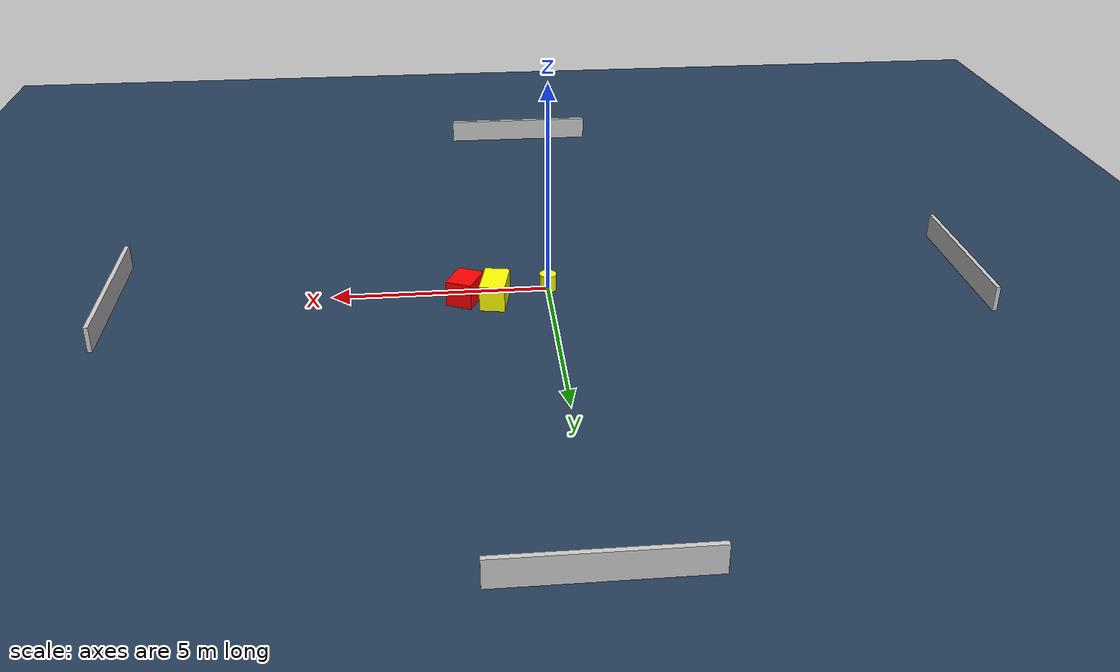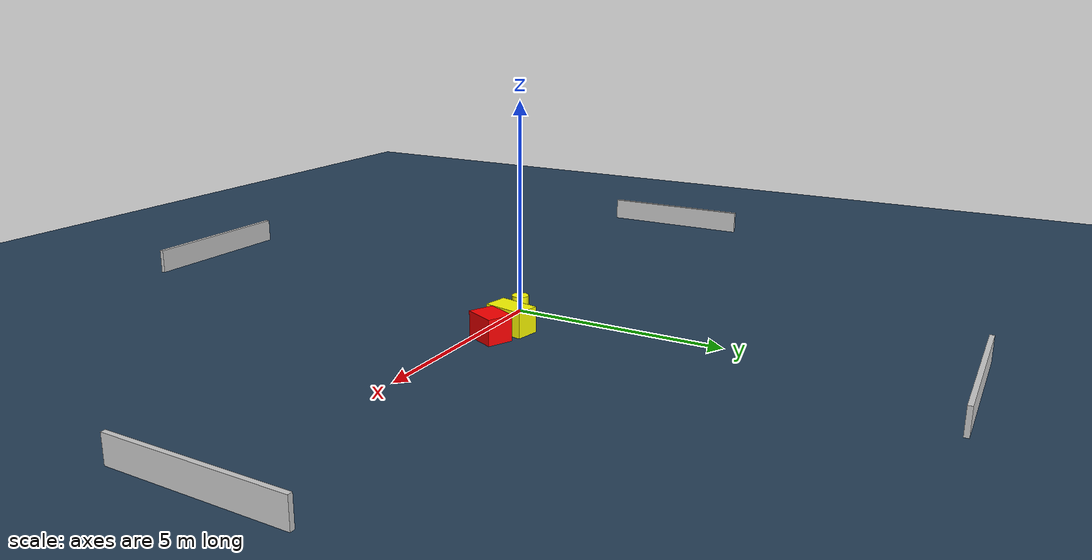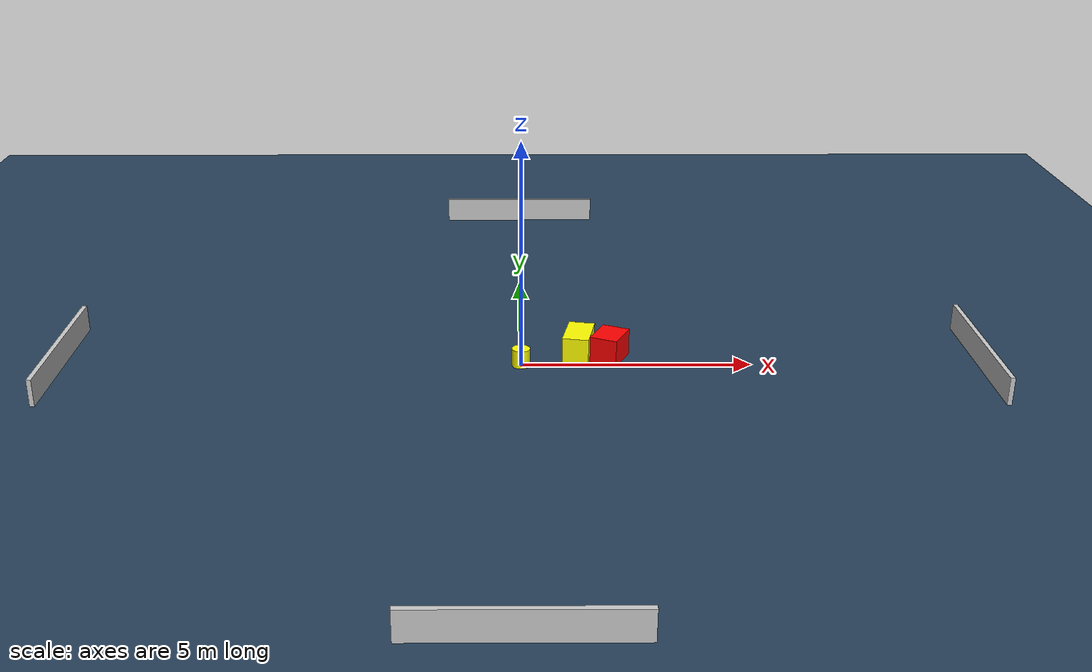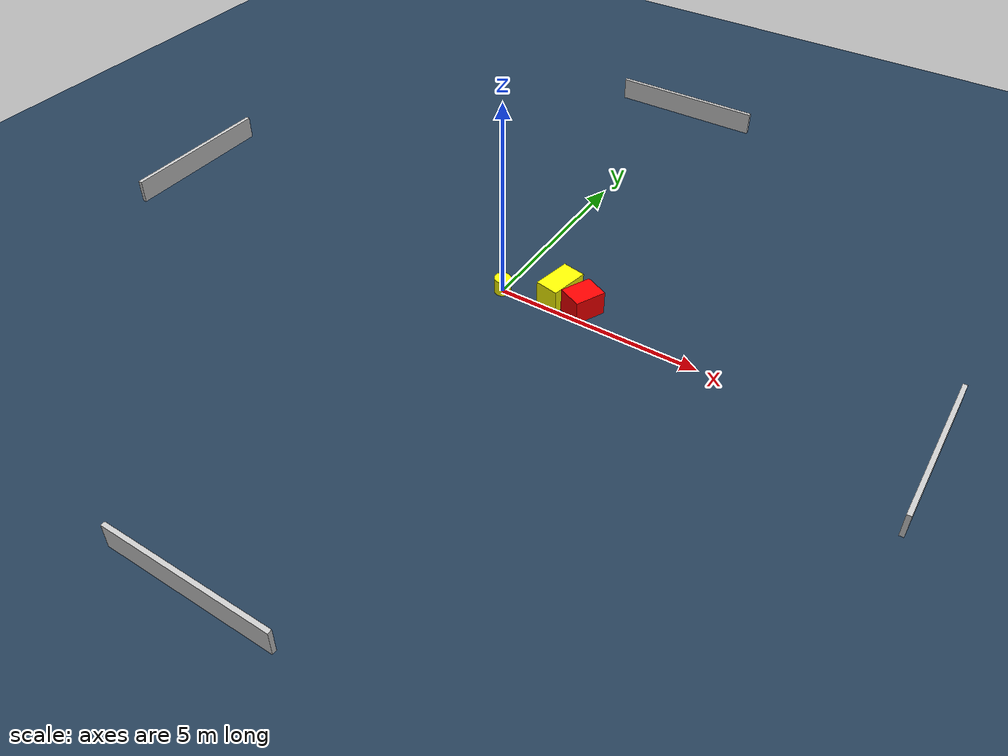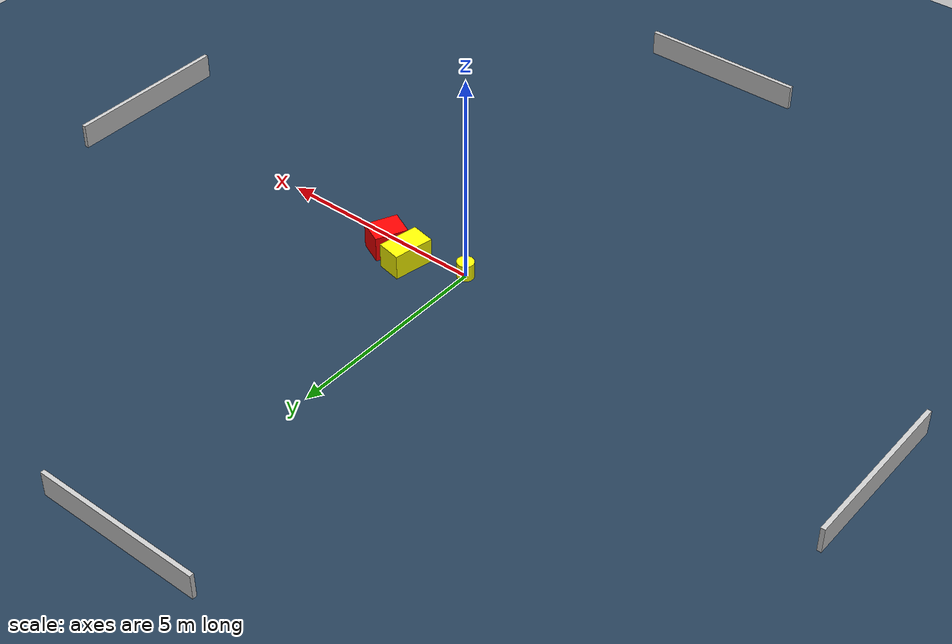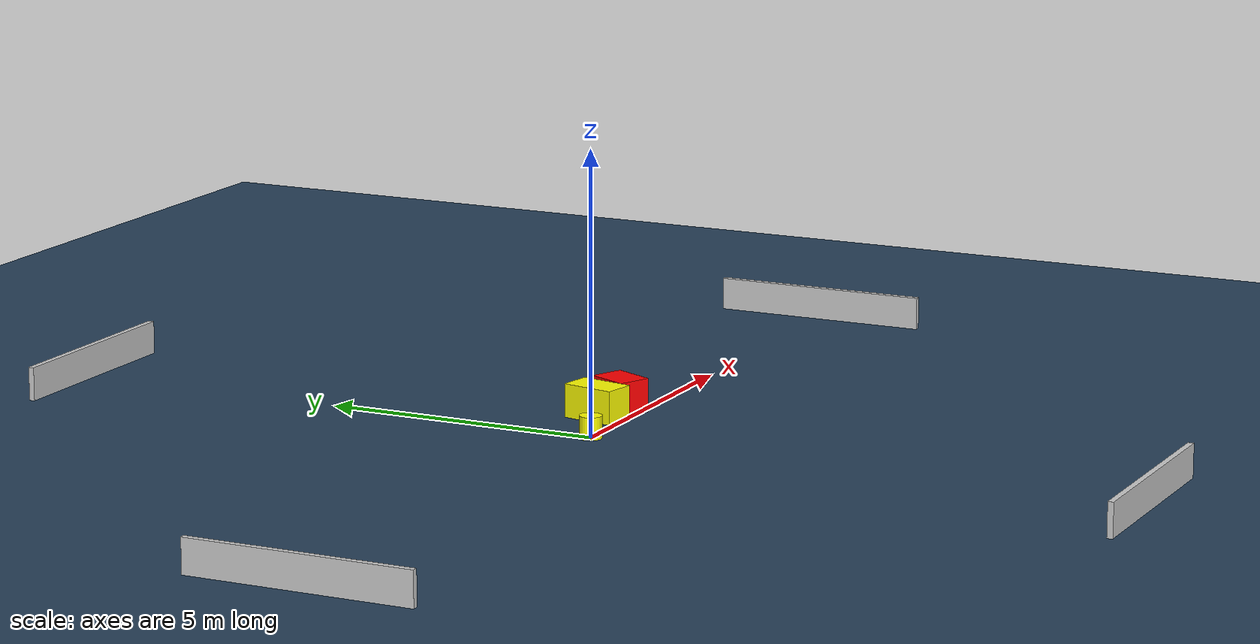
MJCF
<?xml version="1.0" ?>
<mujoco model="generated_environment">
  <option timestep="0.01" integrator="RK4" cone="elliptic"/>
  <default>
    <geom density="1"/>
  </default>
  <asset>
    <texture builtin="gradient" height="3072" name="skybox" rgb1="0.3 0.5 0.7" rgb2="0 0 0" type="skybox" width="512"/>
    <texture builtin="checker" height="300" name="groundplane" rgb1="0.2 0.3 0.4" rgb2="0.1 0.2 0.3" type="2d" width="300"/>
    <material name="groundplane" reflectance="0.2" texrepeat="5 5" texture="groundplane"/>
  </asset>
  <worldbody>
    <light dir="0 0 -1" directional="true" pos="0 0 1.5"/>
    <geom condim="3" friction="0.5 0.005 0.001" material="groundplane" name="floor" pos="0 0 0" size="0 0 0.05" type="plane"/>
    <body name="walls">
      <geom name="wall_1" condim="4" pos="-10.0 0.0 0.3" rgba="0.800000011920929 0.800000011920929 0.800000011920929 1.0" size="0.05 2.0 0.3" type="box"/>
      <geom name="wall_2" condim="4" pos="10.0 0.0 0.3" rgba="0.800000011920929 0.800000011920929 0.800000011920929 1.0" size="0.05 2.0 0.3" type="box"/>
      <geom name="wall_3" condim="4" pos="0.0 -10.0 0.3" rgba="0.800000011920929 0.800000011920929 0.800000011920929 1.0" size="2.0 0.05 0.3" type="box"/>
      <geom name="wall_4" condim="4" pos="0.0 10.0 0.3" rgba="0.800000011920929 0.800000011920929 0.800000011920929 1.0" size="2.0 0.05 0.3" type="box"/>
    </body>
    <body name="robot">
      <joint name="joint_x" type="slide" pos="0 0 0" axis="1 0 0"/>
      <joint name="joint_y" type="slide" pos="0 0 0" axis="0 1 0"/>
      <geom name="robot" type="cylinder" pos="0.0 0.0 0.2" size="0.2 0.2 0.0" mass="5.0" friction="1.0 0.005 0.0001" condim="4" rgba="1.0 1.0 0.0 1.0"/>
    </body>
    <body name="obstacle_1_movable">
      <geom name="obstacle_1_movable" condim="4" pos="1.2700703366459654 0.4959749590862227 0.3" euler="0 0 78.98416875146974" friction="0.0 0.005 0.001" rgba="1.0 1.0 0.0 1.0" size="0.48480886287087205 0.28900926498367036 0.3" type="box" mass="0.1"/>
      <joint type="free"/>
    </body>
    <body name="obstacle_2_static">
      <geom name="obstacle_2_static" condim="4" pos="1.9457890151079236 0.3679177074966494 0.3" euler="0 0 244.86539439653532" friction="0.0 0.005 0.001" rgba="1.0 0.0 0.0 1.0" size="0.38758311656594835 0.3061035198345654 0.3" type="box"/>
    </body>
  </worldbody>
  <actuator>
    <motor name="actuator_x" joint="joint_x" gear="1" ctrlrange="-1 1"/>
    <motor name="actuator_y" joint="joint_y" gear="1" ctrlrange="-1 1"/>
  </actuator>
</mujoco>
